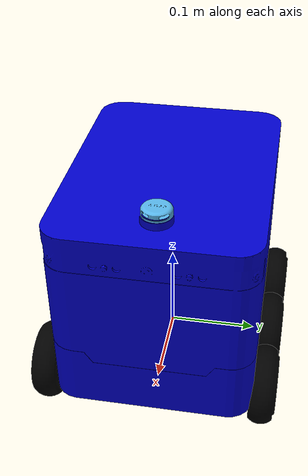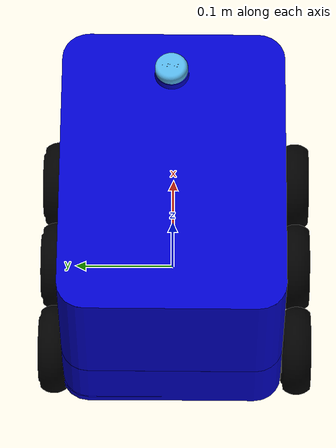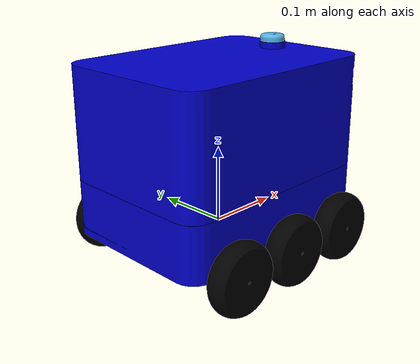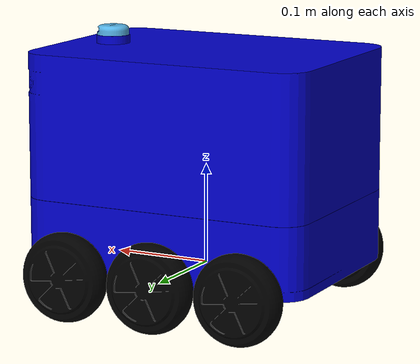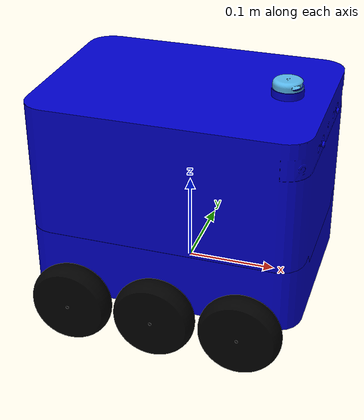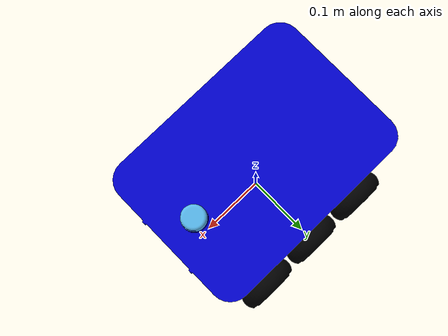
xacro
<?xml version="1.0" encoding="UTF-8"?>
<robot xmlns:xacro="http://ros.org/wiki/xacro" name="neurobot">
   <xacro:property name="wheel_radius" value="0.08" />
   <xacro:property name="wheel_thickness" value="0.04" />
   <xacro:property name="chesis_length" value="0.315" />
   <xacro:property name="chesis_breadth" value="0.22" />
   <xacro:property name="chesis_height" value="0.08" />
   <material name="blue">
      <color rgba="0 0 0.8 1" />
   </material>
   <material name="black">
      <color rgba="0 0 0 1" />
   </material>
   <material name="white">
      <color rgba="1 1 1 1" />
   </material>
   <xacro:macro name="box_inertia" params="mass x y z">
      <inertial>
         <mass value="${mass}" />
         <inertia ixx="${(1/12)*mass*(y*y+z*z)}" ixy="0.0" ixz="0.0" iyy="${(1/12)*mass*(x*x+z*z)}" iyz="0.0" izz="${(1/12)*mass*(y*y+x*x)}" />
      </inertial>
   </xacro:macro>
   <xacro:macro name="cyl_inertia" params="mass r h">
      <inertial>
         <mass value="${mass}" />
         <inertia ixx="${(1/12)*mass*(3*r*r+h*h)}" ixy="0.0" ixz="0.0" iyy="${(1/12)*mass*(3*r*r+h*h)}" iyz="0.0" izz="${(1/2)*mass*r*r}" />
      </inertial>
   </xacro:macro>
   <link name="base_link" />
   <link name="chesis">
      <visual>
         <geometry>
            <mesh filename="package://neurobot_nav/meshes/base_link.STL" scale="0.45 0.45 0.45" />
         </geometry>
         <material name="blue" />
      </visual>
      <collision>
         <geometry>
            <mesh filename="package://neurobot_nav/meshes/base_link.STL" scale="0.45 0.45 0.45" />
         </geometry>
      </collision>
      <xacro:box_inertia mass="0.5" x="${chesis_length}" y="${chesis_breadth}" z="${chesis_height}" />
   </link>
   <gazebo reference="chesis">
      <material>Gazebo/Blue</material>
   </gazebo>
   <joint name="fixed_joint" type="fixed">
      <parent link="base_link" />
      <child link="chesis" />
   </joint>
   <link name="middle_part_link">
      <visual>
         <origin xyz="0 0 0.0715" rpy="0 0 0" />
         <geometry>
            <mesh filename="package://neurobot_nav/meshes/middle_part_link.STL" scale="0.45 0.45 0.45" />
         </geometry>
         <material name="blue" />
      </visual>
      <collision>
         <geometry>
            <mesh filename="package://neurobot_nav/meshes/middle_part_link.STL" scale="0.45 0.45 0.45" />
         </geometry>
      </collision>
      <xacro:box_inertia mass="0.5" x="${chesis_length}" y="${chesis_breadth}" z="${chesis_height}" />
   </link>
   <joint name="fixed_joint_2" type="fixed">
      <parent link="chesis" />
      <child link="middle_part_link" />
   </joint>
   <xacro:macro name="wheel" params="prefix suffix posx posy">
      <link name="${prefix}_${suffix}_wheel">
         <visual>
            <origin xyz="0 -0.017 0" rpy="0 0 0" />
            <geometry>
               <mesh filename="package://neurobot_nav/meshes/tyre_link.STL" scale="0.45 0.45 0.45" />
            </geometry>
            <material name="black" />
         </visual>
         <collision>
            <origin xyz="0 0 0" rpy="0 0 0" />
            <geometry>
               <mesh filename="package://neurobot_nav/meshes/tyre_link.STL" scale="0.45 0.45 0.45" />
            </geometry>
         </collision>
         <xacro:cyl_inertia mass="0.1" r="${wheel_radius}" h="${wheel_thickness}" />
      </link>
      <joint name="${prefix}_${suffix}_wheel_joint" type="continuous">
         <axis xyz="0 1 0" rpy="0 0 0" />
         <parent link="chesis" />
         <child link="${prefix}_${suffix}_wheel" />
         <origin xyz="${(chesis_length*0.3)*posx} ${(chesis_breadth/2+wheel_thickness/2)*0.95*posy} 0" rpy="0 0 0" />
         <dynamics damping="0" />
      </joint>
      <gazebo reference="${prefix}_${suffix}_wheel">
         <material>Gazebo/DarkGray</material>
      </gazebo>
      <transmission name="${prefix}_${suffix}_wheel_trans">
         <type>transmission_interface/SimpleTransmission</type>
         <joint name="${prefix}_${suffix}_wheel_joint">
            <!-- Needed for ros deifferential drive controller -->
            <!-- Needed for gazebo differential drive controller -->
            <hardwareInterface>hardware_interface/EffortJointInterface</hardwareInterface>
         </joint>
         <actuator name="${prefix}_${suffix}_wheel_motor">
            <!-- Needed for ros deifferential drive controller -->
            <!-- Needed for gazebo differential drive controller -->
            <hardwareInterface>hardware_interface/EffortJointInterface</hardwareInterface>
            <mechanicalReduction>1</mechanicalReduction>
         </actuator>
      </transmission>
   </xacro:macro>
   <xacro:wheel prefix="front" suffix="left" posx="1" posy="1" />
   <xacro:wheel prefix="front" suffix="right" posx="1" posy="-1" />
   <xacro:wheel prefix="middle_left" suffix="left" posx="0" posy="1" />
   <xacro:wheel prefix="middle_right" suffix="right" posx="0" posy="-1" />
   <xacro:wheel prefix="back" suffix="left" posx="-1" posy="1" />
   <xacro:wheel prefix="back" suffix="right" posx="-1" posy="-1" />
   <xacro:include filename="$(find neurobot_nav)/urdf/neurobot/sensors.xacro" />
   <xacro:laser_scanner laser_name="neurobot_nav_laser_scanner" parent_link="middle_part_link">
      <cylinder length="0.04" radius="0.04" />
      <origin xyz="0.105 0.002 0.225" rpy="0 0 0" />
   </xacro:laser_scanner>
   <gazebo>
      <plugin name="mobile_base_controller" filename="libgazebo_ros_skid_steer_drive.so">
         <updateRate>100.0</updateRate>
         <robotNamespace>/neurobot_nav</robotNamespace>
         <leftFrontJoint>front_left_wheel_joint</leftFrontJoint>
         <rightFrontJoint>front_right_wheel_joint</rightFrontJoint>
         <leftRearJoint>back_left_wheel_joint</leftRearJoint>
         <rightRearJoint>back_right_wheel_joint</rightRearJoint>
         <wheelSeparation>0.264</wheelSeparation>
         <wheelDiameter>${wheel_radius}*2</wheelDiameter>
         <robotBaseFrame>base_link</robotBaseFrame>
         <torque>20</torque>
         <commandTopic>mobile_base_controller/cmd_vel</commandTopic>
         <odometryTopic>mobile_base_controller/odom</odometryTopic>
         <odometryFrame>odom</odometryFrame>
         <covariance_x>100.0</covariance_x>
         <covariance_y>100.0</covariance_y>
         <covariance_yaw>100.0</covariance_yaw>
         <odometryRate>20.0</odometryRate>
         <broadcastTF>true</broadcastTF>
      </plugin>
   </gazebo>
   <!-- Gazebo plugin for ROS Control -->
   <gazebo>
      <plugin name="gazebo_ros_control" filename="libgazebo_ros_control.so">
         <robotNamespace>/neurobot_nav</robotNamespace>
         <legacyModeNS>true</legacyModeNS>
         <robotSimType>gazebo_ros_control/DefaultRobotHWSim</robotSimType>
      </plugin>
   </gazebo>
</robot>

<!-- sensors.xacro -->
<robot xmlns:xacro="http://ros.org/wiki/xacro">
   <xacro:macro name="rgb_camera" params="camera_name parent_link *box *origin">
      <link name="${camera_name}">
         <collision>
            <origin xyz="0 0 0" rpy="0 0 0" />
            <geometry>
               <xacro:insert_block name="box" />
            </geometry>
         </collision>
         <visual>
            <origin xyz="0 0 0" rpy="0 0 0" />
            <geometry>
               <xacro:insert_block name="box" />
            </geometry>
         </visual>
      </link>
      <joint name="${camera_name}_joint" type="fixed">
         <axis xyz="1 0 0" />
         <xacro:insert_block name="origin" />
         <parent link="${parent_link}" />
         <child link="${camera_name}" />
      </joint>
      <gazebo reference="${camera_name}">
         <sensor type="camera" name="${camera_name}">
            <update_rate>30.0</update_rate>
            <camera name="${camera_name}">
               <horizontal_fov>1.3962634</horizontal_fov>
               <image>
                  <width>800</width>
                  <height>800</height>
                  <format>R8G8B8</format>
               </image>
               <clip>
                  <near>0.02</near>
                  <far>300</far>
               </clip>
               <noise>
                  <type>gaussian</type>
                  <mean>0.0</mean>
                  <stddev>0.007</stddev>
               </noise>
            </camera>
            <plugin name="rgb_camera_controller" filename="libgazebo_ros_camera.so">
               <alwaysOn>true</alwaysOn>
               <updateRate>0.0</updateRate>
               <cameraName>${camera_name}</cameraName>
               <imageTopicName>image_raw</imageTopicName>
               <cameraInfoTopicName>camera_info</cameraInfoTopicName>
               <frameName>${camera_name}</frameName>
               <hackBaseline>0.07</hackBaseline>
               <distortionK1>0.0</distortionK1>
               <distortionK2>0.0</distortionK2>
               <distortionK3>0.0</distortionK3>
               <distortionT1>0.0</distortionT1>
               <distortionT2>0.0</distortionT2>
            </plugin>
         </sensor>
         <material>Gazebo/Gray</material>
      </gazebo>
   </xacro:macro>
   <xacro:macro name="depth_camera" params="camera_name parent_link *box *origin">
      <link name="${camera_name}">
         <collision>
            <origin xyz="0 0 0" rpy="0 0 0" />
            <geometry>
               <xacro:insert_block name="box" />
            </geometry>
         </collision>
         <visual>
            <origin xyz="0 0 0" rpy="0 0 0" />
            <geometry>
               <xacro:insert_block name="box" />
            </geometry>
         </visual>
      </link>
      <joint name="${camera_name}_joint" type="fixed">
         <axis xyz="1 0 0" />
         <xacro:insert_block name="origin" />
         <parent link="${parent_link}" />
         <child link="${camera_name}" />
      </joint>
      <link name="camera_depth_link" />
      <joint name="camera_depth_correction_joint" type="fixed">
         <origin xyz="0 0 0" rpy="-${pi/2} 0 -${pi/2} " />
         <parent link="${camera_name}" />
         <child link="camera_depth_link" />
      </joint>
      <gazebo reference="${camera_name}">
         <sensor name="${camera_name}_camera" type="depth">
            <update_rate>20</update_rate>
            <camera>
               <horizontal_fov>1.047198</horizontal_fov>
               <image>
                  <width>640</width>
                  <height>480</height>
                  <format>R8G8B8</format>
               </image>
               <clip>
                  <near>0.001</near>
                  <far>3</far>
               </clip>
            </camera>
            <plugin name="depth_camera_controller" filename="libgazebo_ros_openni_kinect.so">
               <baseline>0.2</baseline>
               <alwaysOn>true</alwaysOn>
               <updateRate>1.0</updateRate>
               <cameraName>${camera_name}_ir</cameraName>
               <imageTopicName>/${camera_name}/depth/image_raw</imageTopicName>
               <cameraInfoTopicName>/${camera_name}/depth/camera_info</cameraInfoTopicName>
               <depthImageTopicName>/${camera_name}/depth/image_raw</depthImageTopicName>
               <depthImageInfoTopicName>/${camera_name}/depth/camera_info</depthImageInfoTopicName>
               <pointCloudTopicName>/${camera_name}/depth/points</pointCloudTopicName>
               <frameName>camera_depth_link</frameName>
               <pointCloudCutoff>0.001</pointCloudCutoff>
               <pointCloudCutoffMax>3.0</pointCloudCutoffMax>
               <distortionK1>0.00000001</distortionK1>
               <distortionK2>0.00000001</distortionK2>
               <distortionK3>0.00000001</distortionK3>
               <distortionT1>0.00000001</distortionT1>
               <distortionT2>0.00000001</distortionT2>
               <CxPrime>0</CxPrime>
               <Cx>0</Cx>
               <Cy>0</Cy>
               <focalLength>0</focalLength>
               <hackBaseline>0</hackBaseline>
            </plugin>
         </sensor>
      </gazebo>
   </xacro:macro>
   <xacro:macro name="imu" params="imu_name parent_link *box *origin">
      <link name="${imu_name}">
         <visual>
            <origin xyz="0 0 0" rpy="0 0 0" />
            <geometry>
               <xacro:insert_block name="box" />
            </geometry>
         </visual>
      </link>
      <joint name="${imu_name}_joint" type="fixed">
         <axis xyz="0 0 1" />
         <xacro:insert_block name="origin" />
         <parent link="${parent_link}" />
         <child link="${imu_name}" />
      </joint>
      <gazebo reference="${imu_name}">
         <gravity>true</gravity>
         <sensor name="${imu_name}" type="imu">
            <always_on>true</always_on>
            <update_rate>100</update_rate>
            <visualize>true</visualize>
            <topic>__default_topic__</topic>
            <plugin filename="libgazebo_ros_imu_sensor.so" name="imu_controller">
               <topicName>${imu_name}</topicName>
               <bodyName>${imu_name}_link</bodyName>
               <updateRateHZ>30.0</updateRateHZ>
               <gaussianNoise>0.0</gaussianNoise>
               <xyzOffset>0 0 0</xyzOffset>
               <rpyOffset>0 0 0</rpyOffset>
               <frameName>${imu_name}</frameName>
            </plugin>
            <pose>0 0 0 0 0 0</pose>
         </sensor>
      </gazebo>
   </xacro:macro>
   <xacro:macro name="laser_scanner" params="laser_name parent_link *cylinder *origin">
      <link name="${laser_name}">
         <collision>
            <geometry>
               <mesh filename="package://neurobot_nav/meshes/lidar_link.STL" scale="0.45 0.45 0.45" />
            </geometry>
         </collision>
         <visual>
            <geometry>
               <mesh filename="package://neurobot_nav/meshes/lidar_link.STL" scale="0.45 0.45 0.45" />
            </geometry>
         </visual>
      </link>
      <joint name="${laser_name}_joint" type="fixed">
         <axis xyz="0 0 1" />
         <xacro:insert_block name="origin" />
         <parent link="${parent_link}" />
         <child link="${laser_name}" />
      </joint>
      <gazebo reference="${laser_name}">
         <sensor type="ray" name="${laser_name}">
            <pose>0 0 0 0 0 0</pose>
            <visualize>true</visualize>
            <update_rate>40</update_rate>
            <ray>
               <scan>
                  <horizontal>
                     <samples>720</samples>
                     <resolution>1</resolution>
                     <min_angle>-1.570796</min_angle>
                     <max_angle>1.570796</max_angle>
                  </horizontal>
               </scan>
               <range>
                  <min>0.10</min>
                  <max>30.0</max>
                  <resolution>0.01</resolution>
               </range>
               <noise>
                  <type>gaussian</type>
                  <mean>0.0</mean>
                  <stddev>0.01</stddev>
               </noise>
            </ray>
            <plugin name="laser_scanner_controller" filename="libgazebo_ros_laser.so">
               <topicName>${laser_name}/laser/scan</topicName>
               <frameName>${laser_name}</frameName>
            </plugin>
         </sensor>
      </gazebo>
   </xacro:macro>
</robot>
